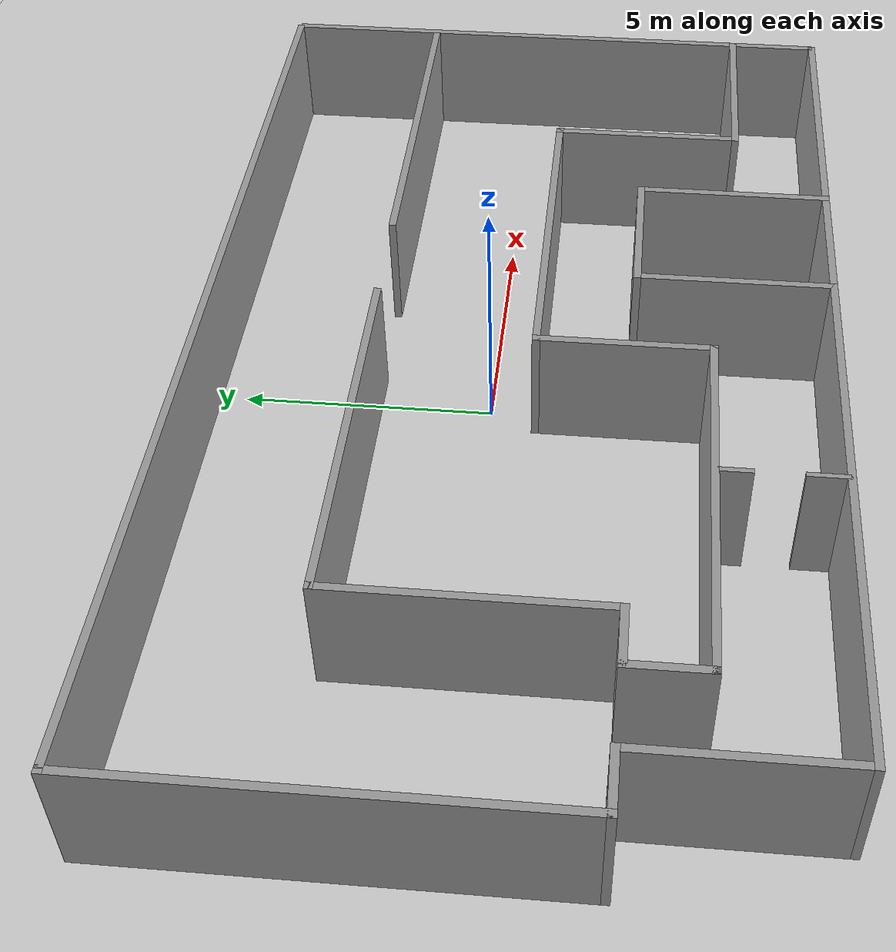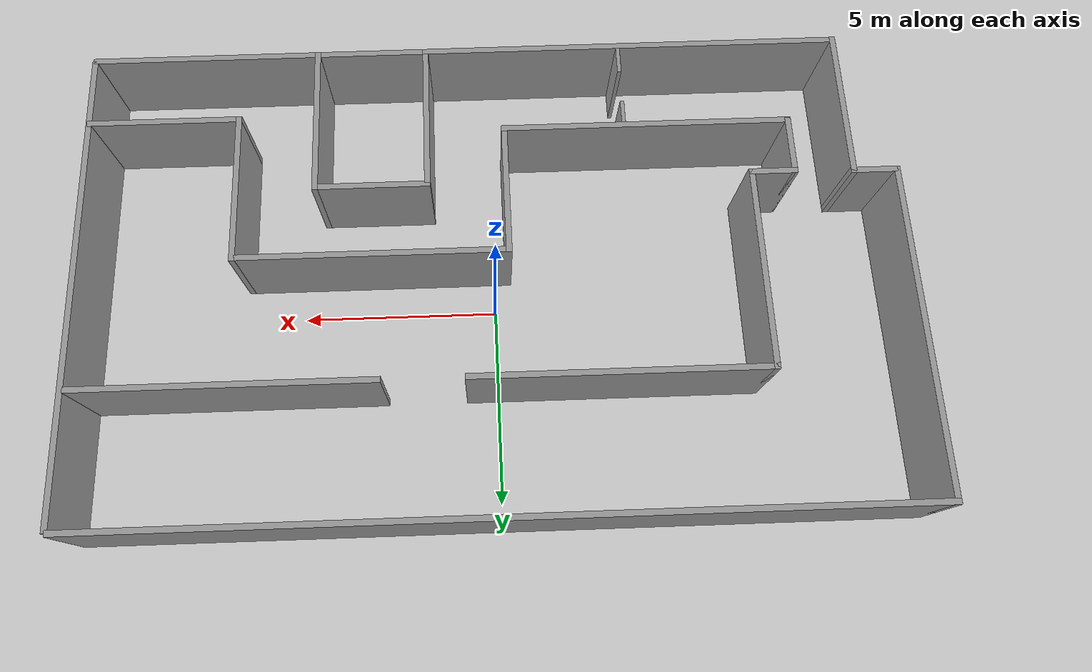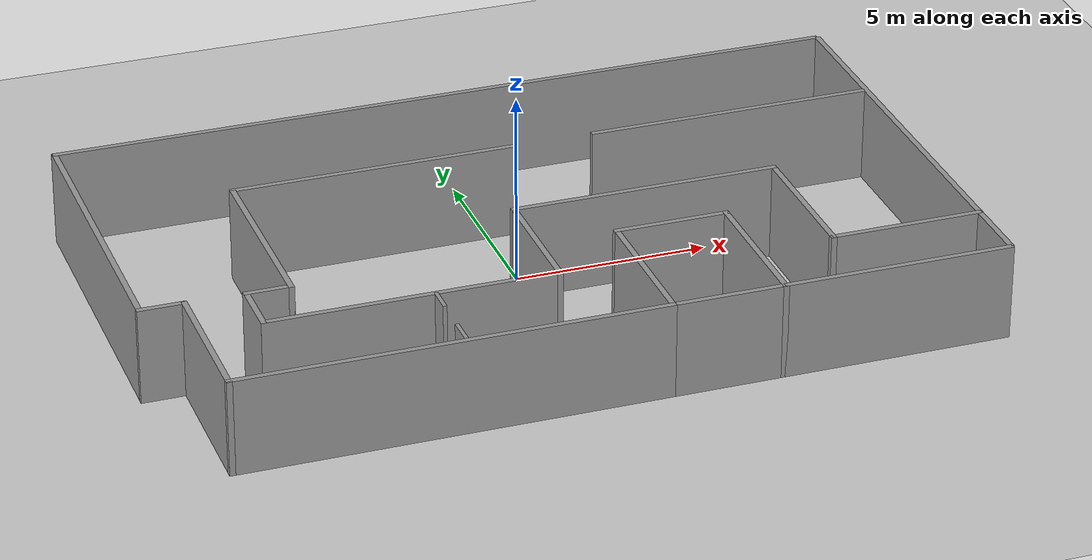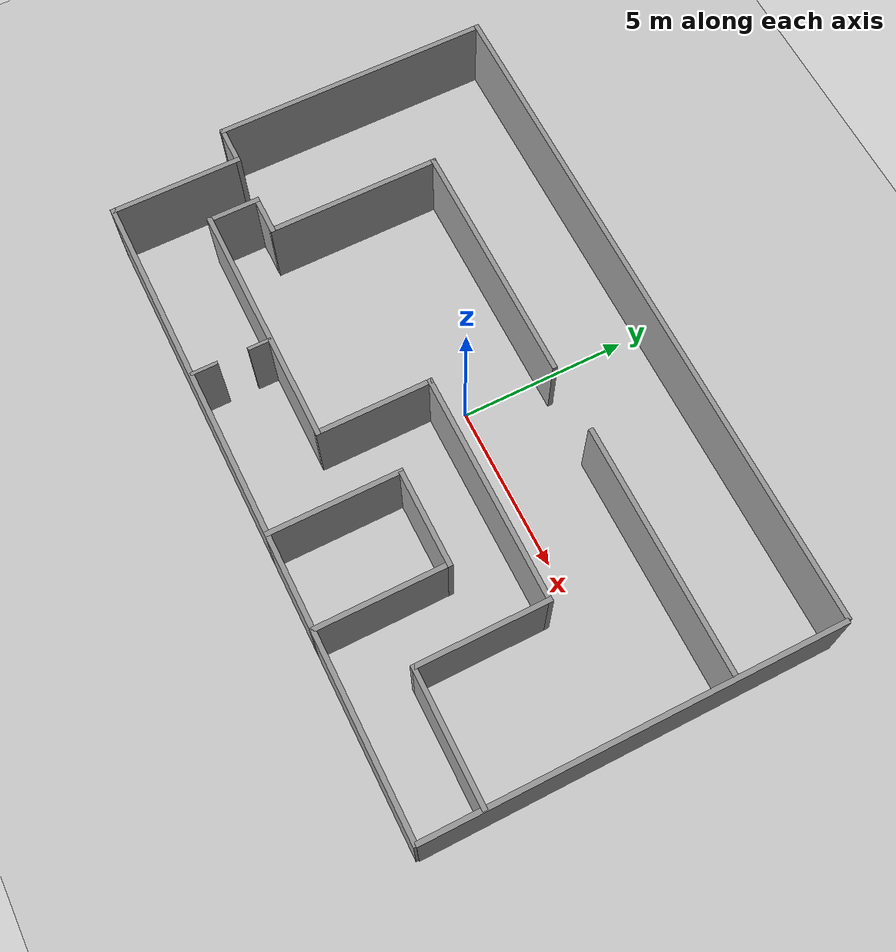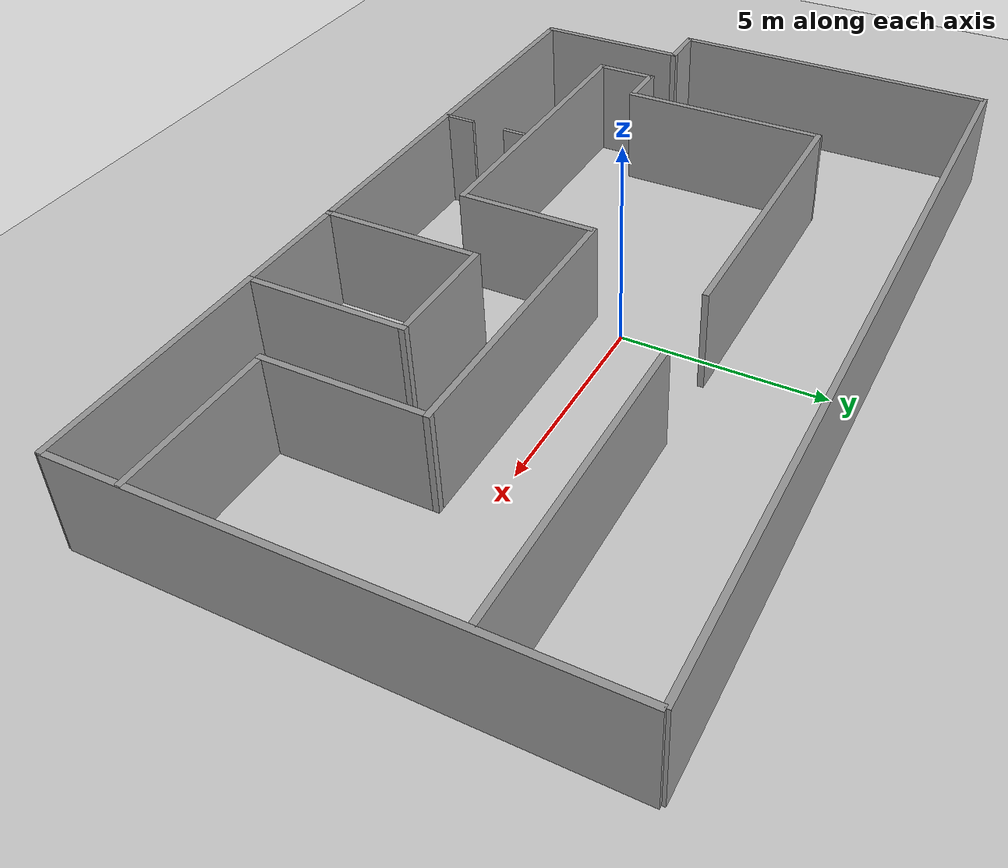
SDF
<sdf version="1.6">
 <world name="default">
  <light name="sun" type="directional">
   <pose>0 0 10 0 -0 0</pose>
   <diffuse>0.8 0.8 0.8 1</diffuse>
   <specular>0.2 0.2 0.2 1</specular>
   <attenuation>
    <range>1000</range>
    <constant>0.9</constant>
    <linear>0.01</linear>
    <quadratic>0.001</quadratic>
   </attenuation>
   <direction>-0.5 0.1 -0.9</direction>
  </light>
  <model name="ground_plane">
   <static>1</static>
   <link name="link">
    <collision name="collision">
     <geometry><plane><normal>0 0 1</normal><size>100 100</size></plane></geometry>
     <surface>
      <contact><collide_bitmask>65535</collide_bitmask></contact>
      <friction><ode><mu>100</mu><mu2>50</mu2></ode></friction>
     </surface>
    </collision>
    <visual name="visual">
     <cast_shadows>0</cast_shadows>
     <geometry><plane><normal>0 0 1</normal><size>100 100</size></plane></geometry>
     <material>
      <script><uri>file://media/materials/scripts/gazebo.material</uri><name>Gazebo/Grey</name></script>
     </material>
    </visual>
   </link>
  </model>
  <gravity>0 0 -9.8</gravity>
  <magnetic_field>6e-06 2.3e-05 -4.2e-05</magnetic_field>
  <atmosphere type="adiabatic"/>
  <physics name="default_physics" default="0" type="ode">
   <max_step_size>0.001</max_step_size>
   <real_time_factor>1</real_time_factor>
   <real_time_update_rate>1000</real_time_update_rate>
  </physics>
  <scene><ambient>0.4 0.4 0.4 1</ambient><background>0.7 0.7 0.7 1</background><shadows>1</shadows></scene>
  <audio><device>default</device></audio>
  <spherical_coordinates>
   <surface_model>EARTH_WGS84</surface_model>
   <latitude_deg>0</latitude_deg>
   <longitude_deg>0</longitude_deg>
   <elevation>0</elevation>
   <heading_deg>0</heading_deg>
  </spherical_coordinates>
  <model name="t3">
   <pose>0 -0.5 0 0 0 0</pose>
   <link name="Wall_12">
    <collision name="Wall_12_Collision">
     <geometry><box><size>4 0.15 2.5</size></box></geometry>
     <pose>0 0 1.25 0 -0 0</pose>
    </collision>
    <visual name="Wall_12_Visual">
     <pose>0 0 1.25 0 -0 0</pose>
     <geometry><box><size>4 0.15 2.5</size></box></geometry>
     <material>
      <script><uri>file://media/materials/scripts/gazebo.material</uri><name>Gazebo/Grey</name></script>
      <ambient>1 1 1 1</ambient>
     </material>
     <meta><layer>0</layer></meta>
    </visual>
    <pose>8.4 -4.25 0 0 -0 3.14159</pose>
   </link>
   <link name="Wall_13">
    <collision name="Wall_13_Collision">
     <geometry><box><size>4 0.15 2.5</size></box></geometry>
     <pose>0 0 1.25 0 -0 0</pose>
    </collision>
    <visual name="Wall_13_Visual">
     <pose>0 0 1.25 0 -0 0</pose>
     <geometry><box><size>4 0.15 2.5</size></box></geometry>
     <material>
      <script><uri>file://media/materials/scripts/gazebo.material</uri><name>Gazebo/Grey</name></script>
      <ambient>1 1 1 1</ambient>
     </material>
     <meta><layer>0</layer></meta>
    </visual>
    <pose>6.475 -2.325 0 0 -0 1.5708</pose>
   </link>
   <link name="Wall_14">
    <collision name="Wall_14_Collision">
     <geometry><box><size>7 0.15 2.5</size></box></geometry>
     <pose>0 0 1.25 0 -0 0</pose>
    </collision>
    <visual name="Wall_14_Visual">
     <pose>0 0 1.25 0 -0 0</pose>
     <geometry><box><size>7 0.15 2.5</size></box></geometry>
     <material>
      <script><uri>file://media/materials/scripts/gazebo.material</uri><name>Gazebo/Grey</name></script>
      <ambient>1 1 1 1</ambient>
     </material>
     <meta><layer>0</layer></meta>
    </visual>
    <pose>3.05 -0.4 0 0 -0 3.14159</pose>
   </link>
   <link name="Wall_17">
    <collision name="Wall_17_Collision">
     <geometry><box><size>11 0.15 2.5</size></box></geometry>
     <pose>0 0 1.25 0 -0 0</pose>
    </collision>
    <visual name="Wall_17_Visual">
     <pose>0 0 1.25 0 -0 0</pose>
     <geometry><box><size>11 0.15 2.5</size></box></geometry>
     <material>
      <script><uri>file://media/materials/scripts/gazebo.material</uri><name>Gazebo/Grey</name></script>
      <ambient>1 1 1 1</ambient>
     </material>
     <meta><layer>0</layer></meta>
    </visual>
    <pose>-3.8 -6.1 0 0 -0 3.14159</pose>
   </link>
   <link name="Wall_22">
    <collision name="Wall_22_Collision">
     <geometry><box><size>3.5 0.15 2.5</size></box></geometry>
     <pose>0 0 1.25 0 -0 0</pose>
    </collision>
    <visual name="Wall_22_Visual">
     <pose>0 0 1.25 0 -0 0</pose>
     <geometry><box><size>3.5 0.15 2.5</size></box></geometry>
     <material>
      <script><uri>file://media/materials/scripts/gazebo.material</uri><name>Gazebo/Grey</name></script>
      <ambient>1 1 1 1</ambient>
     </material>
     <meta><layer>0</layer></meta>
    </visual>
    <pose>-0.375 -2.075 0 0 -0 -1.5708</pose>
   </link>
   <link name="Wall_24">
    <collision name="Wall_24_Collision">
     <geometry><box><size>7.5 0.15 2.5</size></box></geometry>
     <pose>0 0 1.25 0 -0 0</pose>
    </collision>
    <visual name="Wall_24_Visual">
     <pose>0 0 1.25 0 -0 0</pose>
     <geometry><box><size>7.5 0.15 2.5</size></box></geometry>
     <material>
      <script><uri>file://media/materials/scripts/gazebo.material</uri><name>Gazebo/Grey</name></script>
      <ambient>1 1 1 1</ambient>
     </material>
     <meta><layer>0</layer></meta>
    </visual>
    <pose>-4.05025 -3.74975 0 0 -0 3.14153</pose>
   </link>
   <link name="Wall_26">
    <collision name="Wall_26_Collision">
     <geometry><box><size>4 0.15 2.5</size></box></geometry>
     <pose>0 0 1.25 0 -0 0</pose>
    </collision>
    <visual name="Wall_26_Visual">
     <pose>0 0 1.25 0 -0 0</pose>
     <geometry><box><size>4 0.15 2.5</size></box></geometry>
     <material>
      <script><uri>file://media/materials/scripts/gazebo.material</uri><name>Gazebo/Grey</name></script>
      <ambient>1 1 1 1</ambient>
     </material>
     <meta><layer>0</layer></meta>
    </visual>
    <pose>-9.225 -4.175 0 0 -0 1.5708</pose>
   </link>
   <link name="Wall_29">
    <collision name="Wall_29_Collision">
     <geometry><box><size>1.6 0.15 2.5</size></box></geometry>
     <pose>0 0 1.25 0 -0 0</pose>
    </collision>
    <visual name="Wall_29_Visual">
     <pose>0 0 1.25 0 -0 0</pose>
     <geometry><box><size>1.6 0.15 2.5</size></box></geometry>
     <material>
      <script><uri>file://media/materials/scripts/gazebo.material</uri><name>Gazebo/Grey</name></script>
      <ambient>1 1 1 1</ambient>
     </material>
     <meta><layer>0</layer></meta>
    </visual>
    <pose>-7.7255 -3.0245 0 0 -0 1.5708</pose>
   </link>
   <link name="Wall_34">
    <collision name="Wall_34_Collision">
     <geometry><box><size>0.700475 0.1 2.5</size></box></geometry>
     <pose>0 0 1.25 0 -0 0</pose>
    </collision>
    <visual name="Wall_34_Visual">
     <pose>0 0 1.25 0 -0 0</pose>
     <geometry><box><size>0.700475 0.1 2.5</size></box></geometry>
     <material>
      <script><uri>file://media/materials/scripts/gazebo.material</uri><name>Gazebo/Grey</name></script>
      <ambient>1 1 1 1</ambient>
     </material>
     <meta><layer>0</layer></meta>
    </visual>
    <pose>-3.4775 -4.0785 0 0 -0 -1.5708</pose>
   </link>
   <link name="Wall_36">
    <collision name="Wall_36_Collision">
     <geometry><box><size>0.8 0.1 2.5</size></box></geometry>
     <pose>0 0 1.25 0 -0 0</pose>
    </collision>
    <visual name="Wall_36_Visual">
     <pose>0 0 1.25 0 -0 0</pose>
     <geometry><box><size>0.8 0.1 2.5</size></box></geometry>
     <material>
      <script><uri>file://media/materials/scripts/gazebo.material</uri><name>Gazebo/Grey</name></script>
      <ambient>1 1 1 1</ambient>
     </material>
     <meta><layer>0</layer></meta>
    </visual>
    <pose>-3.4775 -5.7165 0 0 -0 1.5708</pose>
   </link>
   <link name="Wall_4">
    <collision name="Wall_4_Collision">
     <geometry><box><size>6 0.15 2.5</size></box></geometry>
     <pose>0 0 1.25 0 -0 0</pose>
    </collision>
    <visual name="Wall_4_Visual">
     <pose>0 0 1.25 0 -0 0</pose>
     <geometry><box><size>6 0.15 2.5</size></box></geometry>
     <material>
      <script><uri>file://media/materials/scripts/gazebo.material</uri><name>Gazebo/Grey</name></script>
      <ambient>1 1 1 1</ambient>
     </material>
     <meta><layer>0</layer></meta>
    </visual>
    <pose>7.4 -6.1 0 0 -0 3.14159</pose>
   </link>
   <link name="Wall_41">
    <collision name="Wall_41_Collision">
     <geometry><box><size>1.25 0.15 2.5</size></box></geometry>
     <pose>0 0 1.25 0 -0 0</pose>
    </collision>
    <visual name="Wall_41_Visual">
     <pose>0 0 1.25 0 -0 0</pose>
     <geometry><box><size>1.25 0.15 2.5</size></box></geometry>
     <material>
      <script><uri>file://media/materials/scripts/gazebo.material</uri><name>Gazebo/Grey</name></script>
      <ambient>1 1 1 1</ambient>
     </material>
     <meta><layer>0</layer></meta>
    </visual>
    <pose>-7.1755 -2.2995 0 0 -0 0</pose>
   </link>
   <link name="Wall_43">
    <collision name="Wall_43_Collision">
     <geometry><box><size>1.25 0.15 2.5</size></box></geometry>
     <pose>0 0 1.25 0 -0 0</pose>
    </collision>
    <visual name="Wall_43_Visual">
     <pose>0 0 1.25 0 -0 0</pose>
     <geometry><box><size>1.25 0.15 2.5</size></box></geometry>
     <material>
      <script><uri>file://media/materials/scripts/gazebo.material</uri><name>Gazebo/Grey</name></script>
      <ambient>1 1 1 1</ambient>
     </material>
     <meta><layer>0</layer></meta>
    </visual>
    <pose>-9.775 -2.25 0 0 -0 3.14159</pose>
   </link>
   <link name="Wall_58">
    <collision name="Wall_58_Collision">
     <geometry><box><size>8.5 0.15 2.5</size></box></geometry>
     <pose>0 0 1.25 0 -0 0</pose>
    </collision>
    <visual name="Wall_58_Visual">
     <pose>0 0 1.25 0 -0 0</pose>
     <geometry><box><size>8.5 0.15 2.5</size></box></geometry>
     <material>
      <script><uri>file://media/materials/scripts/gazebo.material</uri><name>Gazebo/Grey</name></script>
      <ambient>1 1 1 1</ambient>
     </material>
     <meta><layer>0</layer></meta>
    </visual>
    <pose>-10.325 1.925 0 0 -0 1.5708</pose>
   </link>
   <link name="Wall_6">
    <collision name="Wall_6_Collision">
     <geometry><box><size>4 0.15 2.5</size></box></geometry>
     <pose>0 0 1.25 0 -0 0</pose>
    </collision>
    <visual name="Wall_6_Visual">
     <pose>0 0 1.25 0 -0 0</pose>
     <geometry><box><size>4 0.15 2.5</size></box></geometry>
     <material>
      <script><uri>file://media/materials/scripts/gazebo.material</uri><name>Gazebo/Grey</name></script>
      <ambient>1 1 1 1</ambient>
     </material>
     <meta><layer>0</layer></meta>
    </visual>
    <pose>4.475 -4.175 0 0 -0 1.5708</pose>
   </link>
   <link name="Wall_60">
    <collision name="Wall_60_Collision">
     <geometry><box><size>5.25 0.15 2.5</size></box></geometry>
     <pose>0 0 1.25 0 -0 0</pose>
    </collision>
    <visual name="Wall_60_Visual">
     <pose>0 0 1.25 0 -0 0</pose>
     <geometry><box><size>5.25 0.15 2.5</size></box></geometry>
     <material>
      <script><uri>file://media/materials/scripts/gazebo.material</uri><name>Gazebo/Grey</name></script>
      <ambient>1 1 1 1</ambient>
     </material>
     <meta><layer>0</layer></meta>
    </visual>
    <pose>-6.6255 0.2505 0 0 -0 1.5708</pose>
   </link>
   <link name="Wall_64">
    <collision name="Wall_64_Collision">
     <geometry><box><size>20.75 0.15 2.5</size></box></geometry>
     <pose>0 0 1.25 0 -0 0</pose>
    </collision>
    <visual name="Wall_64_Visual">
     <pose>0 0 1.25 0 -0 0</pose>
     <geometry><box><size>20.75 0.15 2.5</size></box></geometry>
     <material>
      <script><uri>file://media/materials/scripts/gazebo.material</uri><name>Gazebo/Grey</name></script>
      <ambient>1 1 1 1</ambient>
     </material>
     <meta><layer>0</layer></meta>
    </visual>
    <pose>-0.025 6.1 0 0 -0 0</pose>
   </link>
   <link name="Wall_66_Left">
    <collision name="Wall_66_Left_Collision">
     <geometry><box><size>7.5 0.15 2.5</size></box></geometry>
     <pose>0 0 1.25 0 -0 0</pose>
    </collision>
    <visual name="Wall_66_Left_Visual">
     <pose>0 0 1.25 0 -0 0</pose>
     <geometry><box><size>7.5 0.15 2.5</size></box></geometry>
     <material>
      <script><uri>file://media/materials/scripts/gazebo.material</uri><name>Gazebo/Grey</name></script>
      <ambient>1 1 1 1</ambient>
     </material>
     <meta><layer>0</layer></meta>
    </visual>
    <pose>-2.9505 2.8005 0 0 -0 0</pose>
   </link>
   <link name="Wall_66_Right">
    <collision name="Wall_66_Right_Collision">
     <geometry><box><size>7.5 0.15 2.5</size></box></geometry>
     <pose>0 0 1.25 0 -0 0</pose>
    </collision>
    <visual name="Wall_66_Right_Visual">
     <pose>0 0 1.25 0 -0 0</pose>
     <geometry><box><size>7.5 0.15 2.5</size></box></geometry>
     <material>
      <script><uri>file://media/materials/scripts/gazebo.material</uri><name>Gazebo/Grey</name></script>
      <ambient>1 1 1 1</ambient>
     </material>
     <meta><layer>0</layer></meta>
    </visual>
    <pose>6.5495 2.8005 0 0 -0 0</pose>
   </link>
   <link name="Wall_7">
    <collision name="Wall_7_Collision">
     <geometry><box><size>3 0.15 2.5</size></box></geometry>
     <pose>0 0 1.25 0 -0 0</pose>
    </collision>
    <visual name="Wall_7_Visual">
     <pose>0 0 1.25 0 -0 0</pose>
     <geometry><box><size>3 0.15 2.5</size></box></geometry>
     <material>
      <script><uri>file://media/materials/scripts/gazebo.material</uri><name>Gazebo/Grey</name></script>
      <ambient>1 1 1 1</ambient>
     </material>
     <meta><layer>0</layer></meta>
    </visual>
    <pose>3.05 -2.25 0 0 -0 3.14159</pose>
   </link>
   <link name="Wall_8">
    <collision name="Wall_8_Collision">
     <geometry><box><size>4 0.15 2.5</size></box></geometry>
     <pose>0 0 1.25 0 -0 0</pose>
    </collision>
    <visual name="Wall_8_Visual">
     <pose>0 0 1.25 0 -0 0</pose>
     <geometry><box><size>4 0.15 2.5</size></box></geometry>
     <material>
      <script><uri>file://media/materials/scripts/gazebo.material</uri><name>Gazebo/Grey</name></script>
      <ambient>1 1 1 1</ambient>
     </material>
     <meta><layer>0</layer></meta>
    </visual>
    <pose>1.625 -4.175 0 0 -0 -1.5708</pose>
   </link>
   <link name="Wall_RightBorder">
    <collision name="Wall_RightBorder_Collision">
     <geometry><box><size>12.2 0.15 2.5</size></box></geometry>
     <pose>0 0 1.25 0 0 0</pose>
    </collision>
    <visual name="Wall_RightBorder_Visual">
     <pose>0 0 1.25 0 0 0</pose>
     <geometry><box><size>12.2 0.15 2.5</size></box></geometry>
     <material>
      <script><uri>file://media/materials/scripts/gazebo.material</uri><name>Gazebo/Grey</name></script>
      <ambient>1 1 1 1</ambient>
     </material>
     <meta><layer>0</layer></meta>
    </visual>
    <pose>10.35 0 0 0 0 1.5708</pose>
   </link>
   <link name="Wall_BottomGap">
    <collision name="Wall_BottomGap_Collision">
     <geometry><box><size>2.7 0.15 2.5</size></box></geometry>
     <pose>0 0 1.25 0 0 0</pose>
    </collision>
    <visual name="Wall_BottomGap_Visual">
     <pose>0 0 1.25 0 0 0</pose>
     <geometry><box><size>2.7 0.15 2.5</size></box></geometry>
     <material>
      <script><uri>file://media/materials/scripts/gazebo.material</uri><name>Gazebo/Grey</name></script>
      <ambient>1 1 1 1</ambient>
     </material>
     <meta><layer>0</layer></meta>
    </visual>
    <pose>3.05 -6.1 0 0 0 0</pose>
   </link>
   <static>1</static>
  </model>
 </world>
</sdf>
